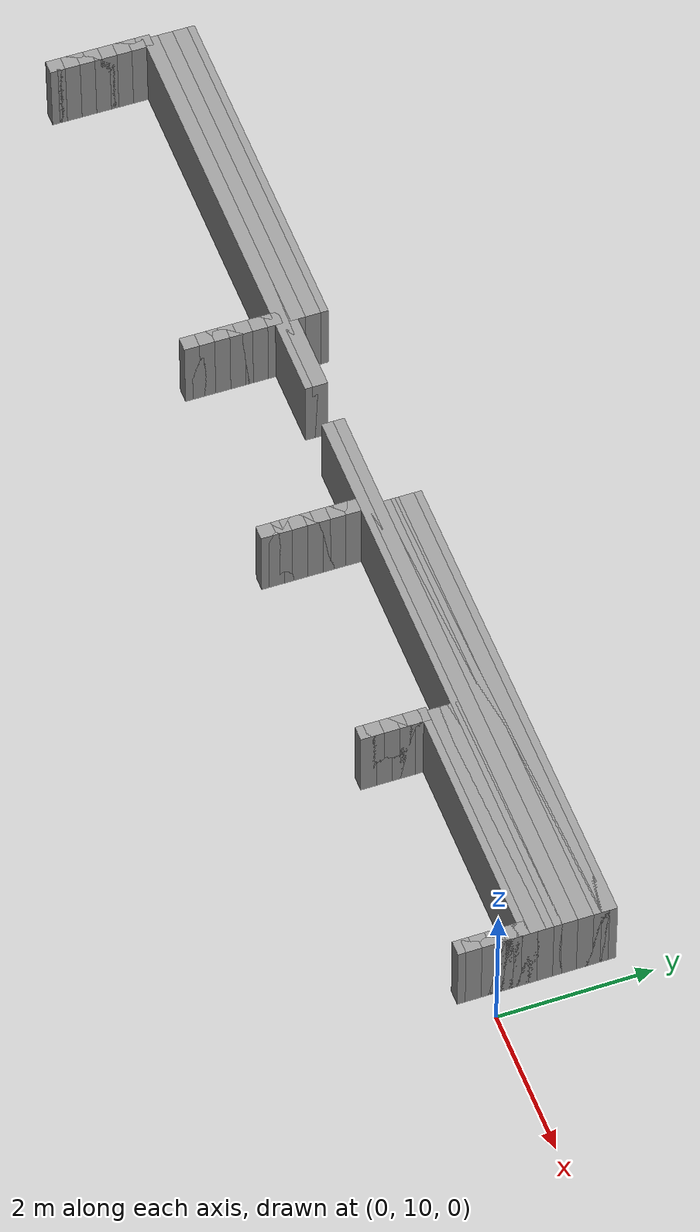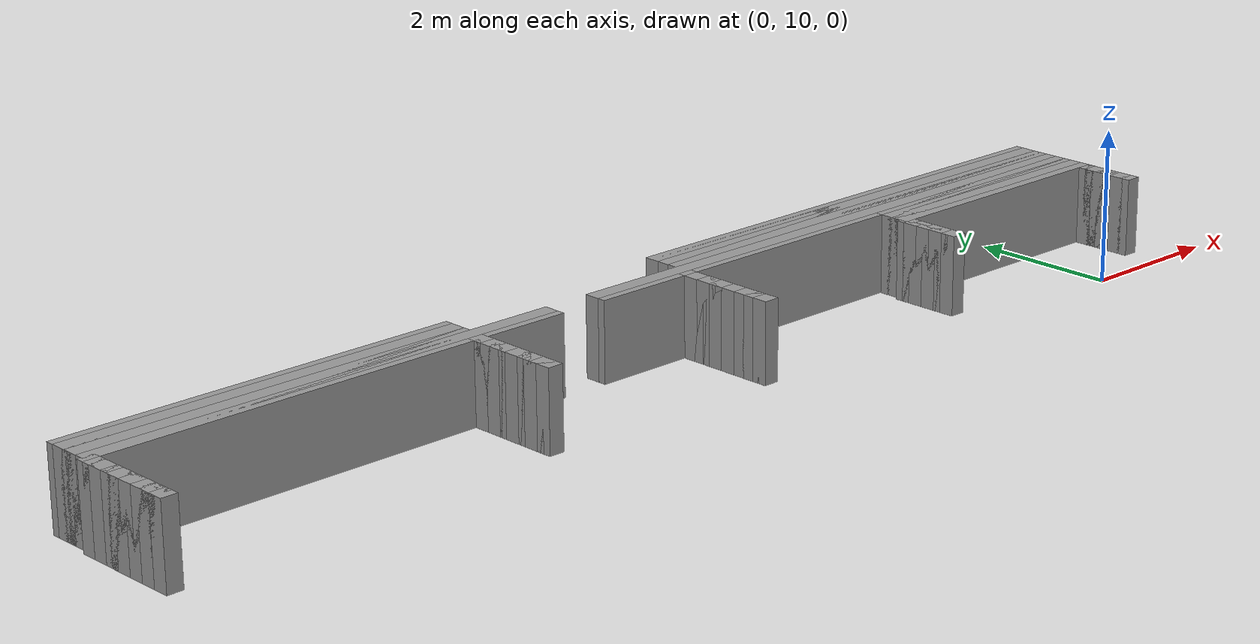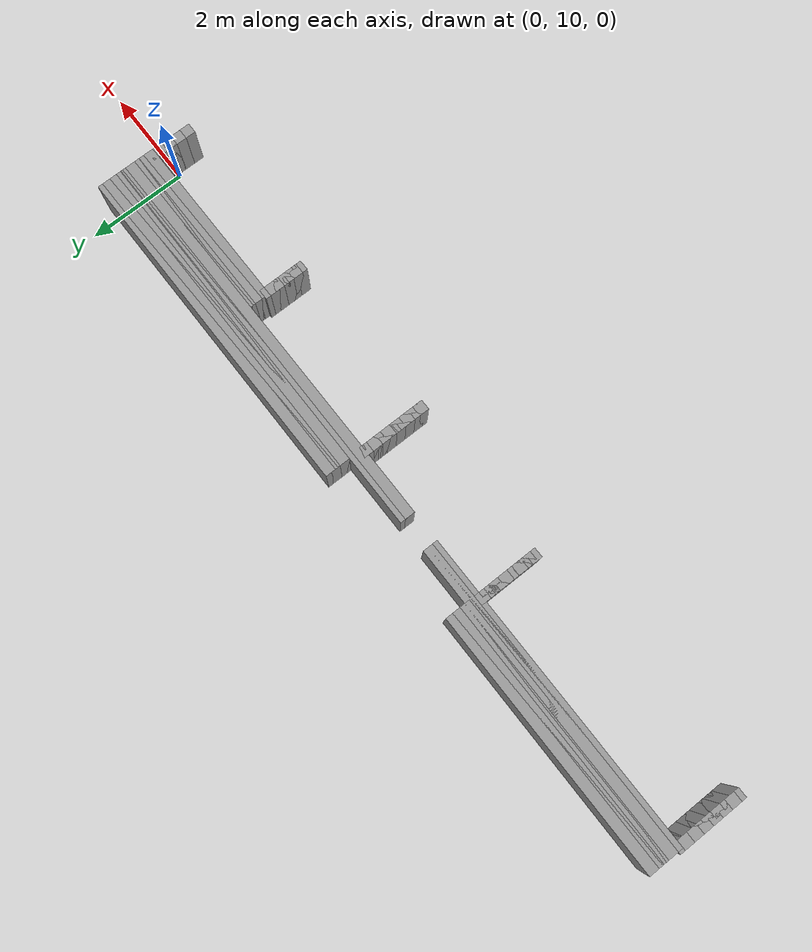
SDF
<sdf version="1.6">
 <world name="GridMap">
  <model name="GridMap">
   <link name="Wall_(67.5,95.0)">
    <collision name="Wall_(67.5,95.0)_Collision">
     <geometry><box><size>0.2 0.2 1.0</size></box></geometry>
     <pose>-6.75 9.5 0.5 0 -0 0</pose>
    </collision>
    <visual name="Wall_(67.5,95.0)_Visual">
     <geometry><box><size>0.2 0.2 1.0</size></box></geometry>
     <pose>-6.75 9.5 0.5 0 -0 0</pose>
     <material>
      <script><uri>file://media/materials/scripts/gazebo.material</uri><name>Gazebo/Grey</name></script>
      <ambient>1 1 1 1</ambient>
     </material>
     <meta><layer>0</layer></meta>
    </visual>
    <pose>0 0 0.5 0 -0 0</pose>
   </link>
   <link name="Wall_(148.5,95.0)">
    <collision name="Wall_(148.5,95.0)_Collision">
     <geometry><box><size>0.2 0.2 1.0</size></box></geometry>
     <pose>-14.850000000000001 9.5 0.5 0 -0 0</pose>
    </collision>
    <visual name="Wall_(148.5,95.0)_Visual">
     <geometry><box><size>0.2 0.2 1.0</size></box></geometry>
     <pose>-14.850000000000001 9.5 0.5 0 -0 0</pose>
     <material>
      <script><uri>file://media/materials/scripts/gazebo.material</uri><name>Gazebo/Grey</name></script>
      <ambient>1 1 1 1</ambient>
     </material>
     <meta><layer>0</layer></meta>
    </visual>
    <pose>0 0 0.5 0 -0 0</pose>
   </link>
   <link name="Wall_(1.0,96.0)">
    <collision name="Wall_(1.0,96.0)_Collision">
     <geometry><box><size>0.2 0.2 1.0</size></box></geometry>
     <pose>-0.1 9.600000000000001 0.5 0 -0 0</pose>
    </collision>
    <visual name="Wall_(1.0,96.0)_Visual">
     <geometry><box><size>0.2 0.2 1.0</size></box></geometry>
     <pose>-0.1 9.600000000000001 0.5 0 -0 0</pose>
     <material>
      <script><uri>file://media/materials/scripts/gazebo.material</uri><name>Gazebo/Grey</name></script>
      <ambient>1 1 1 1</ambient>
     </material>
     <meta><layer>0</layer></meta>
    </visual>
    <pose>0 0 0.5 0 -0 0</pose>
   </link>
   <link name="Wall_(34.5,96.0)">
    <collision name="Wall_(34.5,96.0)_Collision">
     <geometry><box><size>0.2 0.2 1.0</size></box></geometry>
     <pose>-3.45 9.600000000000001 0.5 0 -0 0</pose>
    </collision>
    <visual name="Wall_(34.5,96.0)_Visual">
     <geometry><box><size>0.2 0.2 1.0</size></box></geometry>
     <pose>-3.45 9.600000000000001 0.5 0 -0 0</pose>
     <material>
      <script><uri>file://media/materials/scripts/gazebo.material</uri><name>Gazebo/Grey</name></script>
      <ambient>1 1 1 1</ambient>
     </material>
     <meta><layer>0</layer></meta>
    </visual>
    <pose>0 0 0.5 0 -0 0</pose>
   </link>
   <link name="Wall_(67.5,96.0)">
    <collision name="Wall_(67.5,96.0)_Collision">
     <geometry><box><size>0.2 0.2 1.0</size></box></geometry>
     <pose>-6.75 9.600000000000001 0.5 0 -0 0</pose>
    </collision>
    <visual name="Wall_(67.5,96.0)_Visual">
     <geometry><box><size>0.2 0.2 1.0</size></box></geometry>
     <pose>-6.75 9.600000000000001 0.5 0 -0 0</pose>
     <material>
      <script><uri>file://media/materials/scripts/gazebo.material</uri><name>Gazebo/Grey</name></script>
      <ambient>1 1 1 1</ambient>
     </material>
     <meta><layer>0</layer></meta>
    </visual>
    <pose>0 0 0.5 0 -0 0</pose>
   </link>
   <link name="Wall_(99.0,96.0)">
    <collision name="Wall_(99.0,96.0)_Collision">
     <geometry><box><size>0.2 0.2 1.0</size></box></geometry>
     <pose>-9.9 9.600000000000001 0.5 0 -0 0</pose>
    </collision>
    <visual name="Wall_(99.0,96.0)_Visual">
     <geometry><box><size>0.2 0.2 1.0</size></box></geometry>
     <pose>-9.9 9.600000000000001 0.5 0 -0 0</pose>
     <material>
      <script><uri>file://media/materials/scripts/gazebo.material</uri><name>Gazebo/Grey</name></script>
      <ambient>1 1 1 1</ambient>
     </material>
     <meta><layer>0</layer></meta>
    </visual>
    <pose>0 0 0.5 0 -0 0</pose>
   </link>
   <link name="Wall_(148.5,96.0)">
    <collision name="Wall_(148.5,96.0)_Collision">
     <geometry><box><size>0.2 0.2 1.0</size></box></geometry>
     <pose>-14.850000000000001 9.600000000000001 0.5 0 -0 0</pose>
    </collision>
    <visual name="Wall_(148.5,96.0)_Visual">
     <geometry><box><size>0.2 0.2 1.0</size></box></geometry>
     <pose>-14.850000000000001 9.600000000000001 0.5 0 -0 0</pose>
     <material>
      <script><uri>file://media/materials/scripts/gazebo.material</uri><name>Gazebo/Grey</name></script>
      <ambient>1 1 1 1</ambient>
     </material>
     <meta><layer>0</layer></meta>
    </visual>
    <pose>0 0 0.5 0 -0 0</pose>
   </link>
   <link name="Wall_(1.0,97.0)">
    <collision name="Wall_(1.0,97.0)_Collision">
     <geometry><box><size>0.2 0.2 1.0</size></box></geometry>
     <pose>-0.1 9.700000000000001 0.5 0 -0 0</pose>
    </collision>
    <visual name="Wall_(1.0,97.0)_Visual">
     <geometry><box><size>0.2 0.2 1.0</size></box></geometry>
     <pose>-0.1 9.700000000000001 0.5 0 -0 0</pose>
     <material>
      <script><uri>file://media/materials/scripts/gazebo.material</uri><name>Gazebo/Grey</name></script>
      <ambient>1 1 1 1</ambient>
     </material>
     <meta><layer>0</layer></meta>
    </visual>
    <pose>0 0 0.5 0 -0 0</pose>
   </link>
   <link name="Wall_(34.5,97.0)">
    <collision name="Wall_(34.5,97.0)_Collision">
     <geometry><box><size>0.2 0.2 1.0</size></box></geometry>
     <pose>-3.45 9.700000000000001 0.5 0 -0 0</pose>
    </collision>
    <visual name="Wall_(34.5,97.0)_Visual">
     <geometry><box><size>0.2 0.2 1.0</size></box></geometry>
     <pose>-3.45 9.700000000000001 0.5 0 -0 0</pose>
     <material>
      <script><uri>file://media/materials/scripts/gazebo.material</uri><name>Gazebo/Grey</name></script>
      <ambient>1 1 1 1</ambient>
     </material>
     <meta><layer>0</layer></meta>
    </visual>
    <pose>0 0 0.5 0 -0 0</pose>
   </link>
   <link name="Wall_(67.5,97.0)">
    <collision name="Wall_(67.5,97.0)_Collision">
     <geometry><box><size>0.2 0.2 1.0</size></box></geometry>
     <pose>-6.75 9.700000000000001 0.5 0 -0 0</pose>
    </collision>
    <visual name="Wall_(67.5,97.0)_Visual">
     <geometry><box><size>0.2 0.2 1.0</size></box></geometry>
     <pose>-6.75 9.700000000000001 0.5 0 -0 0</pose>
     <material>
      <script><uri>file://media/materials/scripts/gazebo.material</uri><name>Gazebo/Grey</name></script>
      <ambient>1 1 1 1</ambient>
     </material>
     <meta><layer>0</layer></meta>
    </visual>
    <pose>0 0 0.5 0 -0 0</pose>
   </link>
   <link name="Wall_(99.0,97.0)">
    <collision name="Wall_(99.0,97.0)_Collision">
     <geometry><box><size>0.2 0.2 1.0</size></box></geometry>
     <pose>-9.9 9.700000000000001 0.5 0 -0 0</pose>
    </collision>
    <visual name="Wall_(99.0,97.0)_Visual">
     <geometry><box><size>0.2 0.2 1.0</size></box></geometry>
     <pose>-9.9 9.700000000000001 0.5 0 -0 0</pose>
     <material>
      <script><uri>file://media/materials/scripts/gazebo.material</uri><name>Gazebo/Grey</name></script>
      <ambient>1 1 1 1</ambient>
     </material>
     <meta><layer>0</layer></meta>
    </visual>
    <pose>0 0 0.5 0 -0 0</pose>
   </link>
   <link name="Wall_(148.5,97.0)">
    <collision name="Wall_(148.5,97.0)_Collision">
     <geometry><box><size>0.2 0.2 1.0</size></box></geometry>
     <pose>-14.850000000000001 9.700000000000001 0.5 0 -0 0</pose>
    </collision>
    <visual name="Wall_(148.5,97.0)_Visual">
     <geometry><box><size>0.2 0.2 1.0</size></box></geometry>
     <pose>-14.850000000000001 9.700000000000001 0.5 0 -0 0</pose>
     <material>
      <script><uri>file://media/materials/scripts/gazebo.material</uri><name>Gazebo/Grey</name></script>
      <ambient>1 1 1 1</ambient>
     </material>
     <meta><layer>0</layer></meta>
    </visual>
    <pose>0 0 0.5 0 -0 0</pose>
   </link>
   <link name="Wall_(1.0,98.0)">
    <collision name="Wall_(1.0,98.0)_Collision">
     <geometry><box><size>0.2 0.2 1.0</size></box></geometry>
     <pose>-0.1 9.8 0.5 0 -0 0</pose>
    </collision>
    <visual name="Wall_(1.0,98.0)_Visual">
     <geometry><box><size>0.2 0.2 1.0</size></box></geometry>
     <pose>-0.1 9.8 0.5 0 -0 0</pose>
     <material>
      <script><uri>file://media/materials/scripts/gazebo.material</uri><name>Gazebo/Grey</name></script>
      <ambient>1 1 1 1</ambient>
     </material>
     <meta><layer>0</layer></meta>
    </visual>
    <pose>0 0 0.5 0 -0 0</pose>
   </link>
   <link name="Wall_(34.5,98.0)">
    <collision name="Wall_(34.5,98.0)_Collision">
     <geometry><box><size>0.2 0.2 1.0</size></box></geometry>
     <pose>-3.45 9.8 0.5 0 -0 0</pose>
    </collision>
    <visual name="Wall_(34.5,98.0)_Visual">
     <geometry><box><size>0.2 0.2 1.0</size></box></geometry>
     <pose>-3.45 9.8 0.5 0 -0 0</pose>
     <material>
      <script><uri>file://media/materials/scripts/gazebo.material</uri><name>Gazebo/Grey</name></script>
      <ambient>1 1 1 1</ambient>
     </material>
     <meta><layer>0</layer></meta>
    </visual>
    <pose>0 0 0.5 0 -0 0</pose>
   </link>
   <link name="Wall_(67.5,98.0)">
    <collision name="Wall_(67.5,98.0)_Collision">
     <geometry><box><size>0.2 0.2 1.0</size></box></geometry>
     <pose>-6.75 9.8 0.5 0 -0 0</pose>
    </collision>
    <visual name="Wall_(67.5,98.0)_Visual">
     <geometry><box><size>0.2 0.2 1.0</size></box></geometry>
     <pose>-6.75 9.8 0.5 0 -0 0</pose>
     <material>
      <script><uri>file://media/materials/scripts/gazebo.material</uri><name>Gazebo/Grey</name></script>
      <ambient>1 1 1 1</ambient>
     </material>
     <meta><layer>0</layer></meta>
    </visual>
    <pose>0 0 0.5 0 -0 0</pose>
   </link>
   <link name="Wall_(99.0,98.0)">
    <collision name="Wall_(99.0,98.0)_Collision">
     <geometry><box><size>0.2 0.2 1.0</size></box></geometry>
     <pose>-9.9 9.8 0.5 0 -0 0</pose>
    </collision>
    <visual name="Wall_(99.0,98.0)_Visual">
     <geometry><box><size>0.2 0.2 1.0</size></box></geometry>
     <pose>-9.9 9.8 0.5 0 -0 0</pose>
     <material>
      <script><uri>file://media/materials/scripts/gazebo.material</uri><name>Gazebo/Grey</name></script>
      <ambient>1 1 1 1</ambient>
     </material>
     <meta><layer>0</layer></meta>
    </visual>
    <pose>0 0 0.5 0 -0 0</pose>
   </link>
   <link name="Wall_(148.5,98.0)">
    <collision name="Wall_(148.5,98.0)_Collision">
     <geometry><box><size>0.2 0.2 1.0</size></box></geometry>
     <pose>-14.850000000000001 9.8 0.5 0 -0 0</pose>
    </collision>
    <visual name="Wall_(148.5,98.0)_Visual">
     <geometry><box><size>0.2 0.2 1.0</size></box></geometry>
     <pose>-14.850000000000001 9.8 0.5 0 -0 0</pose>
     <material>
      <script><uri>file://media/materials/scripts/gazebo.material</uri><name>Gazebo/Grey</name></script>
      <ambient>1 1 1 1</ambient>
     </material>
     <meta><layer>0</layer></meta>
    </visual>
    <pose>0 0 0.5 0 -0 0</pose>
   </link>
   <link name="Wall_(1.0,99.0)">
    <collision name="Wall_(1.0,99.0)_Collision">
     <geometry><box><size>0.2 0.2 1.0</size></box></geometry>
     <pose>-0.1 9.9 0.5 0 -0 0</pose>
    </collision>
    <visual name="Wall_(1.0,99.0)_Visual">
     <geometry><box><size>0.2 0.2 1.0</size></box></geometry>
     <pose>-0.1 9.9 0.5 0 -0 0</pose>
     <material>
      <script><uri>file://media/materials/scripts/gazebo.material</uri><name>Gazebo/Grey</name></script>
      <ambient>1 1 1 1</ambient>
     </material>
     <meta><layer>0</layer></meta>
    </visual>
    <pose>0 0 0.5 0 -0 0</pose>
   </link>
   <link name="Wall_(34.5,99.0)">
    <collision name="Wall_(34.5,99.0)_Collision">
     <geometry><box><size>0.2 0.2 1.0</size></box></geometry>
     <pose>-3.45 9.9 0.5 0 -0 0</pose>
    </collision>
    <visual name="Wall_(34.5,99.0)_Visual">
     <geometry><box><size>0.2 0.2 1.0</size></box></geometry>
     <pose>-3.45 9.9 0.5 0 -0 0</pose>
     <material>
      <script><uri>file://media/materials/scripts/gazebo.material</uri><name>Gazebo/Grey</name></script>
      <ambient>1 1 1 1</ambient>
     </material>
     <meta><layer>0</layer></meta>
    </visual>
    <pose>0 0 0.5 0 -0 0</pose>
   </link>
   <link name="Wall_(67.5,99.0)">
    <collision name="Wall_(67.5,99.0)_Collision">
     <geometry><box><size>0.2 0.2 1.0</size></box></geometry>
     <pose>-6.75 9.9 0.5 0 -0 0</pose>
    </collision>
    <visual name="Wall_(67.5,99.0)_Visual">
     <geometry><box><size>0.2 0.2 1.0</size></box></geometry>
     <pose>-6.75 9.9 0.5 0 -0 0</pose>
     <material>
      <script><uri>file://media/materials/scripts/gazebo.material</uri><name>Gazebo/Grey</name></script>
      <ambient>1 1 1 1</ambient>
     </material>
     <meta><layer>0</layer></meta>
    </visual>
    <pose>0 0 0.5 0 -0 0</pose>
   </link>
   <link name="Wall_(99.0,99.0)">
    <collision name="Wall_(99.0,99.0)_Collision">
     <geometry><box><size>0.2 0.2 1.0</size></box></geometry>
     <pose>-9.9 9.9 0.5 0 -0 0</pose>
    </collision>
    <visual name="Wall_(99.0,99.0)_Visual">
     <geometry><box><size>0.2 0.2 1.0</size></box></geometry>
     <pose>-9.9 9.9 0.5 0 -0 0</pose>
     <material>
      <script><uri>file://media/materials/scripts/gazebo.material</uri><name>Gazebo/Grey</name></script>
      <ambient>1 1 1 1</ambient>
     </material>
     <meta><layer>0</layer></meta>
    </visual>
    <pose>0 0 0.5 0 -0 0</pose>
   </link>
   <link name="Wall_(148.5,99.0)">
    <collision name="Wall_(148.5,99.0)_Collision">
     <geometry><box><size>0.2 0.2 1.0</size></box></geometry>
     <pose>-14.850000000000001 9.9 0.5 0 -0 0</pose>
    </collision>
    <visual name="Wall_(148.5,99.0)_Visual">
     <geometry><box><size>0.2 0.2 1.0</size></box></geometry>
     <pose>-14.850000000000001 9.9 0.5 0 -0 0</pose>
     <material>
      <script><uri>file://media/materials/scripts/gazebo.material</uri><name>Gazebo/Grey</name></script>
      <ambient>1 1 1 1</ambient>
     </material>
     <meta><layer>0</layer></meta>
    </visual>
    <pose>0 0 0.5 0 -0 0</pose>
   </link>
   <link name="Wall_(1.0,100.0)">
    <collision name="Wall_(1.0,100.0)_Collision">
     <geometry><box><size>0.2 0.2 1.0</size></box></geometry>
     <pose>-0.1 10.0 0.5 0 -0 0</pose>
    </collision>
    <visual name="Wall_(1.0,100.0)_Visual">
     <geometry><box><size>0.2 0.2 1.0</size></box></geometry>
     <pose>-0.1 10.0 0.5 0 -0 0</pose>
     <material>
      <script><uri>file://media/materials/scripts/gazebo.material</uri><name>Gazebo/Grey</name></script>
      <ambient>1 1 1 1</ambient>
     </material>
     <meta><layer>0</layer></meta>
    </visual>
    <pose>0 0 0.5 0 -0 0</pose>
   </link>
   <link name="Wall_(34.5,100.0)">
    <collision name="Wall_(34.5,100.0)_Collision">
     <geometry><box><size>0.2 0.2 1.0</size></box></geometry>
     <pose>-3.45 10.0 0.5 0 -0 0</pose>
    </collision>
    <visual name="Wall_(34.5,100.0)_Visual">
     <geometry><box><size>0.2 0.2 1.0</size></box></geometry>
     <pose>-3.45 10.0 0.5 0 -0 0</pose>
     <material>
      <script><uri>file://media/materials/scripts/gazebo.material</uri><name>Gazebo/Grey</name></script>
      <ambient>1 1 1 1</ambient>
     </material>
     <meta><layer>0</layer></meta>
    </visual>
    <pose>0 0 0.5 0 -0 0</pose>
   </link>
   <link name="Wall_(67.5,100.0)">
    <collision name="Wall_(67.5,100.0)_Collision">
     <geometry><box><size>0.2 0.2 1.0</size></box></geometry>
     <pose>-6.75 10.0 0.5 0 -0 0</pose>
    </collision>
    <visual name="Wall_(67.5,100.0)_Visual">
     <geometry><box><size>0.2 0.2 1.0</size></box></geometry>
     <pose>-6.75 10.0 0.5 0 -0 0</pose>
     <material>
      <script><uri>file://media/materials/scripts/gazebo.material</uri><name>Gazebo/Grey</name></script>
      <ambient>1 1 1 1</ambient>
     </material>
     <meta><layer>0</layer></meta>
    </visual>
    <pose>0 0 0.5 0 -0 0</pose>
   </link>
   <link name="Wall_(99.0,100.0)">
    <collision name="Wall_(99.0,100.0)_Collision">
     <geometry><box><size>0.2 0.2 1.0</size></box></geometry>
     <pose>-9.9 10.0 0.5 0 -0 0</pose>
    </collision>
    <visual name="Wall_(99.0,100.0)_Visual">
     <geometry><box><size>0.2 0.2 1.0</size></box></geometry>
     <pose>-9.9 10.0 0.5 0 -0 0</pose>
     <material>
      <script><uri>file://media/materials/scripts/gazebo.material</uri><name>Gazebo/Grey</name></script>
      <ambient>1 1 1 1</ambient>
     </material>
     <meta><layer>0</layer></meta>
    </visual>
    <pose>0 0 0.5 0 -0 0</pose>
   </link>
   <link name="Wall_(148.5,100.0)">
    <collision name="Wall_(148.5,100.0)_Collision">
     <geometry><box><size>0.2 0.2 1.0</size></box></geometry>
     <pose>-14.850000000000001 10.0 0.5 0 -0 0</pose>
    </collision>
    <visual name="Wall_(148.5,100.0)_Visual">
     <geometry><box><size>0.2 0.2 1.0</size></box></geometry>
     <pose>-14.850000000000001 10.0 0.5 0 -0 0</pose>
     <material>
      <script><uri>file://media/materials/scripts/gazebo.material</uri><name>Gazebo/Grey</name></script>
      <ambient>1 1 1 1</ambient>
     </material>
     <meta><layer>0</layer></meta>
    </visual>
    <pose>0 0 0.5 0 -0 0</pose>
   </link>
   <link name="Wall_(1.0,101.0)">
    <collision name="Wall_(1.0,101.0)_Collision">
     <geometry><box><size>0.2 0.2 1.0</size></box></geometry>
     <pose>-0.1 10.100000000000001 0.5 0 -0 0</pose>
    </collision>
    <visual name="Wall_(1.0,101.0)_Visual">
     <geometry><box><size>0.2 0.2 1.0</size></box></geometry>
     <pose>-0.1 10.100000000000001 0.5 0 -0 0</pose>
     <material>
      <script><uri>file://media/materials/scripts/gazebo.material</uri><name>Gazebo/Grey</name></script>
      <ambient>1 1 1 1</ambient>
     </material>
     <meta><layer>0</layer></meta>
    </visual>
    <pose>0 0 0.5 0 -0 0</pose>
   </link>
   <link name="Wall_(34.5,101.0)">
    <collision name="Wall_(34.5,101.0)_Collision">
     <geometry><box><size>0.2 0.2 1.0</size></box></geometry>
     <pose>-3.45 10.100000000000001 0.5 0 -0 0</pose>
    </collision>
    <visual name="Wall_(34.5,101.0)_Visual">
     <geometry><box><size>0.2 0.2 1.0</size></box></geometry>
     <pose>-3.45 10.100000000000001 0.5 0 -0 0</pose>
     <material>
      <script><uri>file://media/materials/scripts/gazebo.material</uri><name>Gazebo/Grey</name></script>
      <ambient>1 1 1 1</ambient>
     </material>
     <meta><layer>0</layer></meta>
    </visual>
    <pose>0 0 0.5 0 -0 0</pose>
   </link>
   <link name="Wall_(67.5,101.0)">
    <collision name="Wall_(67.5,101.0)_Collision">
     <geometry><box><size>0.2 0.2 1.0</size></box></geometry>
     <pose>-6.75 10.100000000000001 0.5 0 -0 0</pose>
    </collision>
    <visual name="Wall_(67.5,101.0)_Visual">
     <geometry><box><size>0.2 0.2 1.0</size></box></geometry>
     <pose>-6.75 10.100000000000001 0.5 0 -0 0</pose>
     <material>
      <script><uri>file://media/materials/scripts/gazebo.material</uri><name>Gazebo/Grey</name></script>
      <ambient>1 1 1 1</ambient>
     </material>
     <meta><layer>0</layer></meta>
    </visual>
    <pose>0 0 0.5 0 -0 0</pose>
   </link>
   <link name="Wall_(99.0,101.0)">
    <collision name="Wall_(99.0,101.0)_Collision">
     <geometry><box><size>0.2 0.2 1.0</size></box></geometry>
     <pose>-9.9 10.100000000000001 0.5 0 -0 0</pose>
    </collision>
    <visual name="Wall_(99.0,101.0)_Visual">
     <geometry><box><size>0.2 0.2 1.0</size></box></geometry>
     <pose>-9.9 10.100000000000001 0.5 0 -0 0</pose>
     <material>
      <script><uri>file://media/materials/scripts/gazebo.material</uri><name>Gazebo/Grey</name></script>
      <ambient>1 1 1 1</ambient>
     </material>
     <meta><layer>0</layer></meta>
    </visual>
    <pose>0 0 0.5 0 -0 0</pose>
   </link>
   <link name="Wall_(148.5,101.0)">
    <collision name="Wall_(148.5,101.0)_Collision">
     <geometry><box><size>0.2 0.2 1.0</size></box></geometry>
     <pose>-14.850000000000001 10.100000000000001 0.5 0 -0 0</pose>
    </collision>
    <visual name="Wall_(148.5,101.0)_Visual">
     <geometry><box><size>0.2 0.2 1.0</size></box></geometry>
     <pose>-14.850000000000001 10.100000000000001 0.5 0 -0 0</pose>
     <material>
      <script><uri>file://media/materials/scripts/gazebo.material</uri><name>Gazebo/Grey</name></script>
      <ambient>1 1 1 1</ambient>
     </material>
     <meta><layer>0</layer></meta>
    </visual>
    <pose>0 0 0.5 0 -0 0</pose>
   </link>
   <link name="Wall_(1.0,102.0)">
    <collision name="Wall_(1.0,102.0)_Collision">
     <geometry><box><size>0.2 0.2 1.0</size></box></geometry>
     <pose>-0.1 10.200000000000001 0.5 0 -0 0</pose>
    </collision>
    <visual name="Wall_(1.0,102.0)_Visual">
     <geometry><box><size>0.2 0.2 1.0</size></box></geometry>
     <pose>-0.1 10.200000000000001 0.5 0 -0 0</pose>
     <material>
      <script><uri>file://media/materials/scripts/gazebo.material</uri><name>Gazebo/Grey</name></script>
      <ambient>1 1 1 1</ambient>
     </material>
     <meta><layer>0</layer></meta>
    </visual>
    <pose>0 0 0.5 0 -0 0</pose>
   </link>
   <link name="Wall_(34.5,102.0)">
    <collision name="Wall_(34.5,102.0)_Collision">
     <geometry><box><size>0.2 0.2 1.0</size></box></geometry>
     <pose>-3.45 10.200000000000001 0.5 0 -0 0</pose>
    </collision>
    <visual name="Wall_(34.5,102.0)_Visual">
     <geometry><box><size>0.2 0.2 1.0</size></box></geometry>
     <pose>-3.45 10.200000000000001 0.5 0 -0 0</pose>
     <material>
      <script><uri>file://media/materials/scripts/gazebo.material</uri><name>Gazebo/Grey</name></script>
      <ambient>1 1 1 1</ambient>
     </material>
     <meta><layer>0</layer></meta>
    </visual>
    <pose>0 0 0.5 0 -0 0</pose>
   </link>
   <link name="Wall_(67.5,102.0)">
    <collision name="Wall_(67.5,102.0)_Collision">
     <geometry><box><size>0.2 0.2 1.0</size></box></geometry>
     <pose>-6.75 10.200000000000001 0.5 0 -0 0</pose>
    </collision>
    <visual name="Wall_(67.5,102.0)_Visual">
     <geometry><box><size>0.2 0.2 1.0</size></box></geometry>
     <pose>-6.75 10.200000000000001 0.5 0 -0 0</pose>
     <material>
      <script><uri>file://media/materials/scripts/gazebo.material</uri><name>Gazebo/Grey</name></script>
      <ambient>1 1 1 1</ambient>
     </material>
     <meta><layer>0</layer></meta>
    </visual>
    <pose>0 0 0.5 0 -0 0</pose>
   </link>
   <link name="Wall_(99.0,102.0)">
    <collision name="Wall_(99.0,102.0)_Collision">
     <geometry><box><size>0.2 0.2 1.0</size></box></geometry>
     <pose>-9.9 10.200000000000001 0.5 0 -0 0</pose>
    </collision>
    <visual name="Wall_(99.0,102.0)_Visual">
     <geometry><box><size>0.2 0.2 1.0</size></box></geometry>
     <pose>-9.9 10.200000000000001 0.5 0 -0 0</pose>
     <material>
      <script><uri>file://media/materials/scripts/gazebo.material</uri><name>Gazebo/Grey</name></script>
      <ambient>1 1 1 1</ambient>
     </material>
     <meta><layer>0</layer></meta>
    </visual>
    <pose>0 0 0.5 0 -0 0</pose>
   </link>
   <link name="Wall_(148.5,102.0)">
    <collision name="Wall_(148.5,102.0)_Collision">
     <geometry><box><size>0.2 0.2 1.0</size></box></geometry>
     <pose>-14.850000000000001 10.200000000000001 0.5 0 -0 0</pose>
    </collision>
    <visual name="Wall_(148.5,102.0)_Visual">
     <geometry><box><size>0.2 0.2 1.0</size></box></geometry>
     <pose>-14.850000000000001 10.200000000000001 0.5 0 -0 0</pose>
     <material>
      <script><uri>file://media/materials/scripts/gazebo.material</uri><name>Gazebo/Grey</name></script>
      <ambient>1 1 1 1</ambient>
     </material>
     <meta><layer>0</layer></meta>
    </visual>
    <pose>0 0 0.5 0 -0 0</pose>
   </link>
   <link name="Wall_(1.0,103.0)">
    <collision name="Wall_(1.0,103.0)_Collision">
     <geometry><box><size>0.2 0.2 1.0</size></box></geometry>
     <pose>-0.1 10.3 0.5 0 -0 0</pose>
    </collision>
    <visual name="Wall_(1.0,103.0)_Visual">
     <geometry><box><size>0.2 0.2 1.0</size></box></geometry>
     <pose>-0.1 10.3 0.5 0 -0 0</pose>
     <material>
      <script><uri>file://media/materials/scripts/gazebo.material</uri><name>Gazebo/Grey</name></script>
      <ambient>1 1 1 1</ambient>
     </material>
     <meta><layer>0</layer></meta>
    </visual>
    <pose>0 0 0.5 0 -0 0</pose>
   </link>
   <link name="Wall_(34.5,103.0)">
    <collision name="Wall_(34.5,103.0)_Collision">
     <geometry><box><size>0.2 0.2 1.0</size></box></geometry>
     <pose>-3.45 10.3 0.5 0 -0 0</pose>
    </collision>
    <visual name="Wall_(34.5,103.0)_Visual">
     <geometry><box><size>0.2 0.2 1.0</size></box></geometry>
     <pose>-3.45 10.3 0.5 0 -0 0</pose>
     <material>
      <script><uri>file://media/materials/scripts/gazebo.material</uri><name>Gazebo/Grey</name></script>
      <ambient>1 1 1 1</ambient>
     </material>
     <meta><layer>0</layer></meta>
    </visual>
    <pose>0 0 0.5 0 -0 0</pose>
   </link>
   <link name="Wall_(67.5,103.0)">
    <collision name="Wall_(67.5,103.0)_Collision">
     <geometry><box><size>0.2 0.2 1.0</size></box></geometry>
     <pose>-6.75 10.3 0.5 0 -0 0</pose>
    </collision>
    <visual name="Wall_(67.5,103.0)_Visual">
     <geometry><box><size>0.2 0.2 1.0</size></box></geometry>
     <pose>-6.75 10.3 0.5 0 -0 0</pose>
     <material>
      <script><uri>file://media/materials/scripts/gazebo.material</uri><name>Gazebo/Grey</name></script>
      <ambient>1 1 1 1</ambient>
     </material>
     <meta><layer>0</layer></meta>
    </visual>
    <pose>0 0 0.5 0 -0 0</pose>
   </link>
   <link name="Wall_(99.0,103.0)">
    <collision name="Wall_(99.0,103.0)_Collision">
     <geometry><box><size>0.2 0.2 1.0</size></box></geometry>
     <pose>-9.9 10.3 0.5 0 -0 0</pose>
    </collision>
    <visual name="Wall_(99.0,103.0)_Visual">
     <geometry><box><size>0.2 0.2 1.0</size></box></geometry>
     <pose>-9.9 10.3 0.5 0 -0 0</pose>
     <material>
      <script><uri>file://media/materials/scripts/gazebo.material</uri><name>Gazebo/Grey</name></script>
      <ambient>1 1 1 1</ambient>
     </material>
     <meta><layer>0</layer></meta>
    </visual>
    <pose>0 0 0.5 0 -0 0</pose>
   </link>
   <link name="Wall_(148.5,103.0)">
    <collision name="Wall_(148.5,103.0)_Collision">
     <geometry><box><size>0.2 0.2 1.0</size></box></geometry>
     <pose>-14.850000000000001 10.3 0.5 0 -0 0</pose>
    </collision>
    <visual name="Wall_(148.5,103.0)_Visual">
     <geometry><box><size>0.2 0.2 1.0</size></box></geometry>
     <pose>-14.850000000000001 10.3 0.5 0 -0 0</pose>
     <material>
      <script><uri>file://media/materials/scripts/gazebo.material</uri><name>Gazebo/Grey</name></script>
      <ambient>1 1 1 1</ambient>
     </material>
     <meta><layer>0</layer></meta>
    </visual>
    <pose>0 0 0.5 0 -0 0</pose>
   </link>
   <link name="Wall_(17.5,104.0)">
    <collision name="Wall_(17.5,104.0)_Collision">
     <geometry><box><size>3.5 0.2 1.0</size></box></geometry>
     <pose>-1.75 10.4 0.5 0 -0 0</pose>
    </collision>
    <visual name="Wall_(17.5,104.0)_Visual">
     <geometry><box><size>3.5 0.2 1.0</size></box></geometry>
     <pose>-1.75 10.4 0.5 0 -0 0</pose>
     <material>
      <script><uri>file://media/materials/scripts/gazebo.material</uri><name>Gazebo/Grey</name></script>
      <ambient>1 1 1 1</ambient>
     </material>
     <meta><layer>0</layer></meta>
    </visual>
    <pose>0 0 0.5 0 -0 0</pose>
   </link>
   <link name="Wall_(67.5,104.0)">
    <collision name="Wall_(67.5,104.0)_Collision">
     <geometry><box><size>0.2 0.2 1.0</size></box></geometry>
     <pose>-6.75 10.4 0.5 0 -0 0</pose>
    </collision>
    <visual name="Wall_(67.5,104.0)_Visual">
     <geometry><box><size>0.2 0.2 1.0</size></box></geometry>
     <pose>-6.75 10.4 0.5 0 -0 0</pose>
     <material>
      <script><uri>file://media/materials/scripts/gazebo.material</uri><name>Gazebo/Grey</name></script>
      <ambient>1 1 1 1</ambient>
     </material>
     <meta><layer>0</layer></meta>
    </visual>
    <pose>0 0 0.5 0 -0 0</pose>
   </link>
   <link name="Wall_(99.0,104.0)">
    <collision name="Wall_(99.0,104.0)_Collision">
     <geometry><box><size>0.2 0.2 1.0</size></box></geometry>
     <pose>-9.9 10.4 0.5 0 -0 0</pose>
    </collision>
    <visual name="Wall_(99.0,104.0)_Visual">
     <geometry><box><size>0.2 0.2 1.0</size></box></geometry>
     <pose>-9.9 10.4 0.5 0 -0 0</pose>
     <material>
      <script><uri>file://media/materials/scripts/gazebo.material</uri><name>Gazebo/Grey</name></script>
      <ambient>1 1 1 1</ambient>
     </material>
     <meta><layer>0</layer></meta>
    </visual>
    <pose>0 0 0.5 0 -0 0</pose>
   </link>
   <link name="Wall_(148.5,104.0)">
    <collision name="Wall_(148.5,104.0)_Collision">
     <geometry><box><size>0.2 0.2 1.0</size></box></geometry>
     <pose>-14.850000000000001 10.4 0.5 0 -0 0</pose>
    </collision>
    <visual name="Wall_(148.5,104.0)_Visual">
     <geometry><box><size>0.2 0.2 1.0</size></box></geometry>
     <pose>-14.850000000000001 10.4 0.5 0 -0 0</pose>
     <material>
      <script><uri>file://media/materials/scripts/gazebo.material</uri><name>Gazebo/Grey</name></script>
      <ambient>1 1 1 1</ambient>
     </material>
     <meta><layer>0</layer></meta>
    </visual>
    <pose>0 0 0.5 0 -0 0</pose>
   </link>
   <link name="Wall_(17.5,105.0)">
    <collision name="Wall_(17.5,105.0)_Collision">
     <geometry><box><size>3.5 0.2 1.0</size></box></geometry>
     <pose>-1.75 10.5 0.5 0 -0 0</pose>
    </collision>
    <visual name="Wall_(17.5,105.0)_Visual">
     <geometry><box><size>3.5 0.2 1.0</size></box></geometry>
     <pose>-1.75 10.5 0.5 0 -0 0</pose>
     <material>
      <script><uri>file://media/materials/scripts/gazebo.material</uri><name>Gazebo/Grey</name></script>
      <ambient>1 1 1 1</ambient>
     </material>
     <meta><layer>0</layer></meta>
    </visual>
    <pose>0 0 0.5 0 -0 0</pose>
   </link>
   <link name="Wall_(67.5,105.0)">
    <collision name="Wall_(67.5,105.0)_Collision">
     <geometry><box><size>0.2 0.2 1.0</size></box></geometry>
     <pose>-6.75 10.5 0.5 0 -0 0</pose>
    </collision>
    <visual name="Wall_(67.5,105.0)_Visual">
     <geometry><box><size>0.2 0.2 1.0</size></box></geometry>
     <pose>-6.75 10.5 0.5 0 -0 0</pose>
     <material>
      <script><uri>file://media/materials/scripts/gazebo.material</uri><name>Gazebo/Grey</name></script>
      <ambient>1 1 1 1</ambient>
     </material>
     <meta><layer>0</layer></meta>
    </visual>
    <pose>0 0 0.5 0 -0 0</pose>
   </link>
   <link name="Wall_(99.0,105.0)">
    <collision name="Wall_(99.0,105.0)_Collision">
     <geometry><box><size>0.2 0.2 1.0</size></box></geometry>
     <pose>-9.9 10.5 0.5 0 -0 0</pose>
    </collision>
    <visual name="Wall_(99.0,105.0)_Visual">
     <geometry><box><size>0.2 0.2 1.0</size></box></geometry>
     <pose>-9.9 10.5 0.5 0 -0 0</pose>
     <material>
      <script><uri>file://media/materials/scripts/gazebo.material</uri><name>Gazebo/Grey</name></script>
      <ambient>1 1 1 1</ambient>
     </material>
     <meta><layer>0</layer></meta>
    </visual>
    <pose>0 0 0.5 0 -0 0</pose>
   </link>
   <link name="Wall_(148.5,105.0)">
    <collision name="Wall_(148.5,105.0)_Collision">
     <geometry><box><size>0.2 0.2 1.0</size></box></geometry>
     <pose>-14.850000000000001 10.5 0.5 0 -0 0</pose>
    </collision>
    <visual name="Wall_(148.5,105.0)_Visual">
     <geometry><box><size>0.2 0.2 1.0</size></box></geometry>
     <pose>-14.850000000000001 10.5 0.5 0 -0 0</pose>
     <material>
      <script><uri>file://media/materials/scripts/gazebo.material</uri><name>Gazebo/Grey</name></script>
      <ambient>1 1 1 1</ambient>
     </material>
     <meta><layer>0</layer></meta>
    </visual>
    <pose>0 0 0.5 0 -0 0</pose>
   </link>
   <link name="Wall_(17.5,106.0)">
    <collision name="Wall_(17.5,106.0)_Collision">
     <geometry><box><size>3.5 0.2 1.0</size></box></geometry>
     <pose>-1.75 10.600000000000001 0.5 0 -0 0</pose>
    </collision>
    <visual name="Wall_(17.5,106.0)_Visual">
     <geometry><box><size>3.5 0.2 1.0</size></box></geometry>
     <pose>-1.75 10.600000000000001 0.5 0 -0 0</pose>
     <material>
      <script><uri>file://media/materials/scripts/gazebo.material</uri><name>Gazebo/Grey</name></script>
      <ambient>1 1 1 1</ambient>
     </material>
     <meta><layer>0</layer></meta>
    </visual>
    <pose>0 0 0.5 0 -0 0</pose>
   </link>
   <link name="Wall_(67.5,106.0)">
    <collision name="Wall_(67.5,106.0)_Collision">
     <geometry><box><size>0.2 0.2 1.0</size></box></geometry>
     <pose>-6.75 10.600000000000001 0.5 0 -0 0</pose>
    </collision>
    <visual name="Wall_(67.5,106.0)_Visual">
     <geometry><box><size>0.2 0.2 1.0</size></box></geometry>
     <pose>-6.75 10.600000000000001 0.5 0 -0 0</pose>
     <material>
      <script><uri>file://media/materials/scripts/gazebo.material</uri><name>Gazebo/Grey</name></script>
      <ambient>1 1 1 1</ambient>
     </material>
     <meta><layer>0</layer></meta>
    </visual>
    <pose>0 0 0.5 0 -0 0</pose>
   </link>
   <link name="Wall_(99.0,106.0)">
    <collision name="Wall_(99.0,106.0)_Collision">
     <geometry><box><size>0.2 0.2 1.0</size></box></geometry>
     <pose>-9.9 10.600000000000001 0.5 0 -0 0</pose>
    </collision>
    <visual name="Wall_(99.0,106.0)_Visual">
     <geometry><box><size>0.2 0.2 1.0</size></box></geometry>
     <pose>-9.9 10.600000000000001 0.5 0 -0 0</pose>
     <material>
      <script><uri>file://media/materials/scripts/gazebo.material</uri><name>Gazebo/Grey</name></script>
      <ambient>1 1 1 1</ambient>
     </material>
     <meta><layer>0</layer></meta>
    </visual>
    <pose>0 0 0.5 0 -0 0</pose>
   </link>
   <link name="Wall_(148.5,106.0)">
    <collision name="Wall_(148.5,106.0)_Collision">
     <geometry><box><size>0.2 0.2 1.0</size></box></geometry>
     <pose>-14.850000000000001 10.600000000000001 0.5 0 -0 0</pose>
    </collision>
    <visual name="Wall_(148.5,106.0)_Visual">
     <geometry><box><size>0.2 0.2 1.0</size></box></geometry>
     <pose>-14.850000000000001 10.600000000000001 0.5 0 -0 0</pose>
     <material>
      <script><uri>file://media/materials/scripts/gazebo.material</uri><name>Gazebo/Grey</name></script>
      <ambient>1 1 1 1</ambient>
     </material>
     <meta><layer>0</layer></meta>
    </visual>
    <pose>0 0 0.5 0 -0 0</pose>
   </link>
   <link name="Wall_(17.5,107.0)">
    <collision name="Wall_(17.5,107.0)_Collision">
     <geometry><box><size>3.5 0.2 1.0</size></box></geometry>
     <pose>-1.75 10.700000000000001 0.5 0 -0 0</pose>
    </collision>
    <visual name="Wall_(17.5,107.0)_Visual">
     <geometry><box><size>3.5 0.2 1.0</size></box></geometry>
     <pose>-1.75 10.700000000000001 0.5 0 -0 0</pose>
     <material>
      <script><uri>file://media/materials/scripts/gazebo.material</uri><name>Gazebo/Grey</name></script>
      <ambient>1 1 1 1</ambient>
     </material>
     <meta><layer>0</layer></meta>
    </visual>
    <pose>0 0 0.5 0 -0 0</pose>
   </link>
   <link name="Wall_(67.5,107.0)">
    <collision name="Wall_(67.5,107.0)_Collision">
     <geometry><box><size>0.2 0.2 1.0</size></box></geometry>
     <pose>-6.75 10.700000000000001 0.5 0 -0 0</pose>
    </collision>
    <visual name="Wall_(67.5,107.0)_Visual">
     <geometry><box><size>0.2 0.2 1.0</size></box></geometry>
     <pose>-6.75 10.700000000000001 0.5 0 -0 0</pose>
     <material>
      <script><uri>file://media/materials/scripts/gazebo.material</uri><name>Gazebo/Grey</name></script>
      <ambient>1 1 1 1</ambient>
     </material>
     <meta><layer>0</layer></meta>
    </visual>
    <pose>0 0 0.5 0 -0 0</pose>
   </link>
   <link name="Wall_(99.0,107.0)">
    <collision name="Wall_(99.0,107.0)_Collision">
     <geometry><box><size>0.2 0.2 1.0</size></box></geometry>
     <pose>-9.9 10.700000000000001 0.5 0 -0 0</pose>
    </collision>
    <visual name="Wall_(99.0,107.0)_Visual">
     <geometry><box><size>0.2 0.2 1.0</size></box></geometry>
     <pose>-9.9 10.700000000000001 0.5 0 -0 0</pose>
     <material>
      <script><uri>file://media/materials/scripts/gazebo.material</uri><name>Gazebo/Grey</name></script>
      <ambient>1 1 1 1</ambient>
     </material>
     <meta><layer>0</layer></meta>
    </visual>
    <pose>0 0 0.5 0 -0 0</pose>
   </link>
   <link name="Wall_(148.5,107.0)">
    <collision name="Wall_(148.5,107.0)_Collision">
     <geometry><box><size>0.2 0.2 1.0</size></box></geometry>
     <pose>-14.850000000000001 10.700000000000001 0.5 0 -0 0</pose>
    </collision>
    <visual name="Wall_(148.5,107.0)_Visual">
     <geometry><box><size>0.2 0.2 1.0</size></box></geometry>
     <pose>-14.850000000000001 10.700000000000001 0.5 0 -0 0</pose>
     <material>
      <script><uri>file://media/materials/scripts/gazebo.material</uri><name>Gazebo/Grey</name></script>
      <ambient>1 1 1 1</ambient>
     </material>
     <meta><layer>0</layer></meta>
    </visual>
    <pose>0 0 0.5 0 -0 0</pose>
   </link>
   <link name="Wall_(40.5,108.0)">
    <collision name="Wall_(40.5,108.0)_Collision">
     <geometry><box><size>8.1 0.2 1.0</size></box></geometry>
     <pose>-4.05 10.8 0.5 0 -0 0</pose>
    </collision>
    <visual name="Wall_(40.5,108.0)_Visual">
     <geometry><box><size>8.1 0.2 1.0</size></box></geometry>
     <pose>-4.05 10.8 0.5 0 -0 0</pose>
     <material>
      <script><uri>file://media/materials/scripts/gazebo.material</uri><name>Gazebo/Grey</name></script>
      <ambient>1 1 1 1</ambient>
     </material>
     <meta><layer>0</layer></meta>
    </visual>
    <pose>0 0 0.5 0 -0 0</pose>
   </link>
   <link name="Wall_(118.0,108.0)">
    <collision name="Wall_(118.0,108.0)_Collision">
     <geometry><box><size>6.2 0.2 1.0</size></box></geometry>
     <pose>-11.8 10.8 0.5 0 -0 0</pose>
    </collision>
    <visual name="Wall_(118.0,108.0)_Visual">
     <geometry><box><size>6.2 0.2 1.0</size></box></geometry>
     <pose>-11.8 10.8 0.5 0 -0 0</pose>
     <material>
      <script><uri>file://media/materials/scripts/gazebo.material</uri><name>Gazebo/Grey</name></script>
      <ambient>1 1 1 1</ambient>
     </material>
     <meta><layer>0</layer></meta>
    </visual>
    <pose>0 0 0.5 0 -0 0</pose>
   </link>
   <link name="Wall_(40.5,109.0)">
    <collision name="Wall_(40.5,109.0)_Collision">
     <geometry><box><size>8.1 0.2 1.0</size></box></geometry>
     <pose>-4.05 10.9 0.5 0 -0 0</pose>
    </collision>
    <visual name="Wall_(40.5,109.0)_Visual">
     <geometry><box><size>8.1 0.2 1.0</size></box></geometry>
     <pose>-4.05 10.9 0.5 0 -0 0</pose>
     <material>
      <script><uri>file://media/materials/scripts/gazebo.material</uri><name>Gazebo/Grey</name></script>
      <ambient>1 1 1 1</ambient>
     </material>
     <meta><layer>0</layer></meta>
    </visual>
    <pose>0 0 0.5 0 -0 0</pose>
   </link>
   <link name="Wall_(118.0,109.0)">
    <collision name="Wall_(118.0,109.0)_Collision">
     <geometry><box><size>6.2 0.2 1.0</size></box></geometry>
     <pose>-11.8 10.9 0.5 0 -0 0</pose>
    </collision>
    <visual name="Wall_(118.0,109.0)_Visual">
     <geometry><box><size>6.2 0.2 1.0</size></box></geometry>
     <pose>-11.8 10.9 0.5 0 -0 0</pose>
     <material>
      <script><uri>file://media/materials/scripts/gazebo.material</uri><name>Gazebo/Grey</name></script>
      <ambient>1 1 1 1</ambient>
     </material>
     <meta><layer>0</layer></meta>
    </visual>
    <pose>0 0 0.5 0 -0 0</pose>
   </link>
   <link name="Wall_(33.5,110.0)">
    <collision name="Wall_(33.5,110.0)_Collision">
     <geometry><box><size>6.7 0.2 1.0</size></box></geometry>
     <pose>-3.35 11.0 0.5 0 -0 0</pose>
    </collision>
    <visual name="Wall_(33.5,110.0)_Visual">
     <geometry><box><size>6.7 0.2 1.0</size></box></geometry>
     <pose>-3.35 11.0 0.5 0 -0 0</pose>
     <material>
      <script><uri>file://media/materials/scripts/gazebo.material</uri><name>Gazebo/Grey</name></script>
      <ambient>1 1 1 1</ambient>
     </material>
     <meta><layer>0</layer></meta>
    </visual>
    <pose>0 0 0.5 0 -0 0</pose>
   </link>
   <link name="Wall_(123.5,110.0)">
    <collision name="Wall_(123.5,110.0)_Collision">
     <geometry><box><size>5.1000000000000005 0.2 1.0</size></box></geometry>
     <pose>-12.350000000000001 11.0 0.5 0 -0 0</pose>
    </collision>
    <visual name="Wall_(123.5,110.0)_Visual">
     <geometry><box><size>5.1000000000000005 0.2 1.0</size></box></geometry>
     <pose>-12.350000000000001 11.0 0.5 0 -0 0</pose>
     <material>
      <script><uri>file://media/materials/scripts/gazebo.material</uri><name>Gazebo/Grey</name></script>
      <ambient>1 1 1 1</ambient>
     </material>
     <meta><layer>0</layer></meta>
    </visual>
    <pose>0 0 0.5 0 -0 0</pose>
   </link>
   <link name="Wall_(33.5,111.0)">
    <collision name="Wall_(33.5,111.0)_Collision">
     <geometry><box><size>6.7 0.2 1.0</size></box></geometry>
     <pose>-3.35 11.100000000000001 0.5 0 -0 0</pose>
    </collision>
    <visual name="Wall_(33.5,111.0)_Visual">
     <geometry><box><size>6.7 0.2 1.0</size></box></geometry>
     <pose>-3.35 11.100000000000001 0.5 0 -0 0</pose>
     <material>
      <script><uri>file://media/materials/scripts/gazebo.material</uri><name>Gazebo/Grey</name></script>
      <ambient>1 1 1 1</ambient>
     </material>
     <meta><layer>0</layer></meta>
    </visual>
    <pose>0 0 0.5 0 -0 0</pose>
   </link>
   <link name="Wall_(123.5,111.0)">
    <collision name="Wall_(123.5,111.0)_Collision">
     <geometry><box><size>5.1000000000000005 0.2 1.0</size></box></geometry>
     <pose>-12.350000000000001 11.100000000000001 0.5 0 -0 0</pose>
    </collision>
    <visual name="Wall_(123.5,111.0)_Visual">
     <geometry><box><size>5.1000000000000005 0.2 1.0</size></box></geometry>
     <pose>-12.350000000000001 11.100000000000001 0.5 0 -0 0</pose>
     <material>
      <script><uri>file://media/materials/scripts/gazebo.material</uri><name>Gazebo/Grey</name></script>
      <ambient>1 1 1 1</ambient>
     </material>
     <meta><layer>0</layer></meta>
    </visual>
    <pose>0 0 0.5 0 -0 0</pose>
   </link>
   <link name="Wall_(33.5,112.0)">
    <collision name="Wall_(33.5,112.0)_Collision">
     <geometry><box><size>6.7 0.2 1.0</size></box></geometry>
     <pose>-3.35 11.200000000000001 0.5 0 -0 0</pose>
    </collision>
    <visual name="Wall_(33.5,112.0)_Visual">
     <geometry><box><size>6.7 0.2 1.0</size></box></geometry>
     <pose>-3.35 11.200000000000001 0.5 0 -0 0</pose>
     <material>
      <script><uri>file://media/materials/scripts/gazebo.material</uri><name>Gazebo/Grey</name></script>
      <ambient>1 1 1 1</ambient>
     </material>
     <meta><layer>0</layer></meta>
    </visual>
    <pose>0 0 0.5 0 -0 0</pose>
   </link>
   <link name="Wall_(123.5,112.0)">
    <collision name="Wall_(123.5,112.0)_Collision">
     <geometry><box><size>5.1000000000000005 0.2 1.0</size></box></geometry>
     <pose>-12.350000000000001 11.200000000000001 0.5 0 -0 0</pose>
    </collision>
    <visual name="Wall_(123.5,112.0)_Visual">
     <geometry><box><size>5.1000000000000005 0.2 1.0</size></box></geometry>
     <pose>-12.350000000000001 11.200000000000001 0.5 0 -0 0</pose>
     <material>
      <script><uri>file://media/materials/scripts/gazebo.material</uri><name>Gazebo/Grey</name></script>
      <ambient>1 1 1 1</ambient>
     </material>
     <meta><layer>0</layer></meta>
    </visual>
    <pose>0 0 0.5 0 -0 0</pose>
   </link>
   <link name="Wall_(33.5,113.0)">
    <collision name="Wall_(33.5,113.0)_Collision">
     <geometry><box><size>6.7 0.2 1.0</size></box></geometry>
     <pose>-3.35 11.3 0.5 0 -0 0</pose>
    </collision>
    <visual name="Wall_(33.5,113.0)_Visual">
     <geometry><box><size>6.7 0.2 1.0</size></box></geometry>
     <pose>-3.35 11.3 0.5 0 -0 0</pose>
     <material>
      <script><uri>file://media/materials/scripts/gazebo.material</uri><name>Gazebo/Grey</name></script>
      <ambient>1 1 1 1</ambient>
     </material>
     <meta><layer>0</layer></meta>
    </visual>
    <pose>0 0 0.5 0 -0 0</pose>
   </link>
   <link name="Wall_(123.5,113.0)">
    <collision name="Wall_(123.5,113.0)_Collision">
     <geometry><box><size>5.1000000000000005 0.2 1.0</size></box></geometry>
     <pose>-12.350000000000001 11.3 0.5 0 -0 0</pose>
    </collision>
    <visual name="Wall_(123.5,113.0)_Visual">
     <geometry><box><size>5.1000000000000005 0.2 1.0</size></box></geometry>
     <pose>-12.350000000000001 11.3 0.5 0 -0 0</pose>
     <material>
      <script><uri>file://media/materials/scripts/gazebo.material</uri><name>Gazebo/Grey</name></script>
      <ambient>1 1 1 1</ambient>
     </material>
     <meta><layer>0</layer></meta>
    </visual>
    <pose>0 0 0.5 0 -0 0</pose>
   </link>
   <link name="Wall_(33.5,114.0)">
    <collision name="Wall_(33.5,114.0)_Collision">
     <geometry><box><size>6.7 0.2 1.0</size></box></geometry>
     <pose>-3.35 11.4 0.5 0 -0 0</pose>
    </collision>
    <visual name="Wall_(33.5,114.0)_Visual">
     <geometry><box><size>6.7 0.2 1.0</size></box></geometry>
     <pose>-3.35 11.4 0.5 0 -0 0</pose>
     <material>
      <script><uri>file://media/materials/scripts/gazebo.material</uri><name>Gazebo/Grey</name></script>
      <ambient>1 1 1 1</ambient>
     </material>
     <meta><layer>0</layer></meta>
    </visual>
    <pose>0 0 0.5 0 -0 0</pose>
   </link>
   <static>1</static>
  </model>
 </world>
</sdf>
